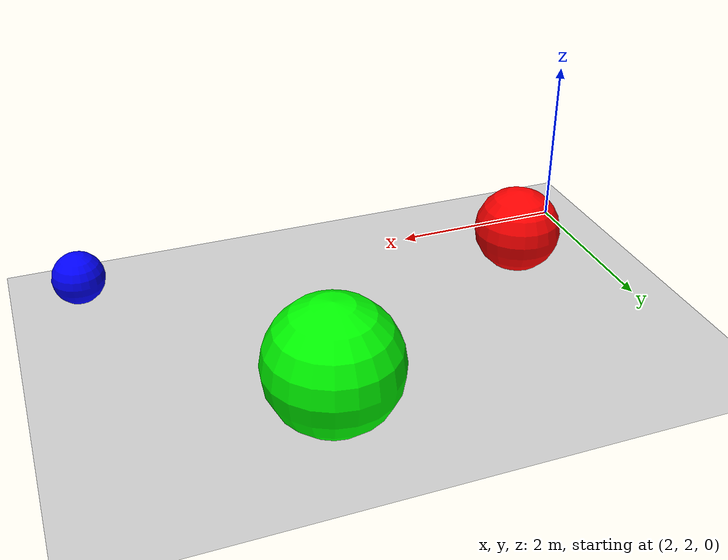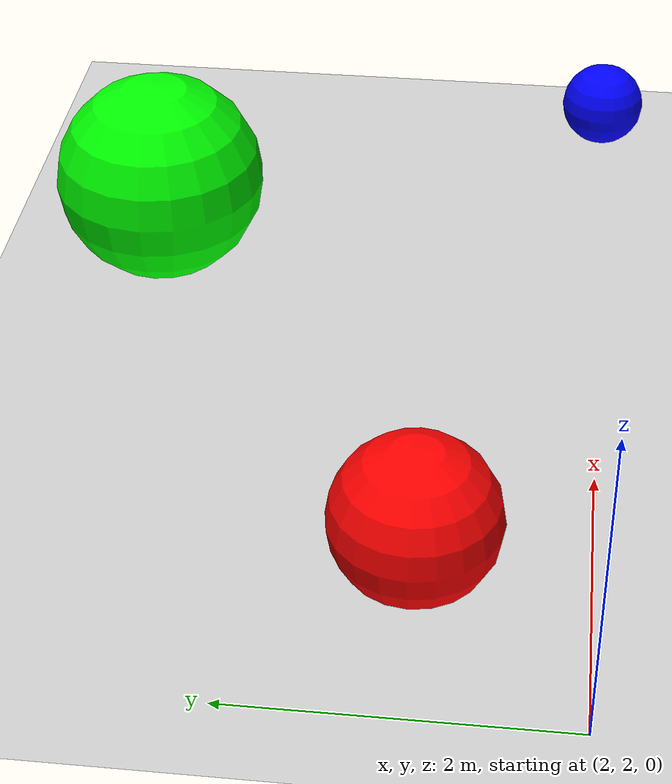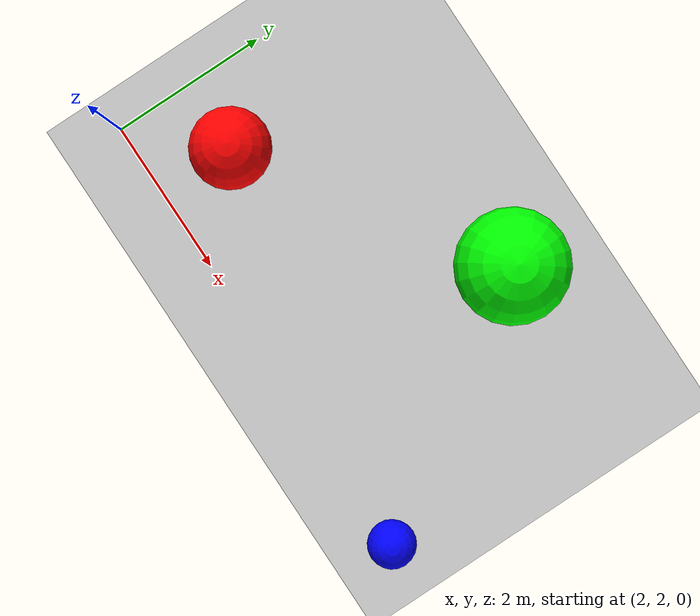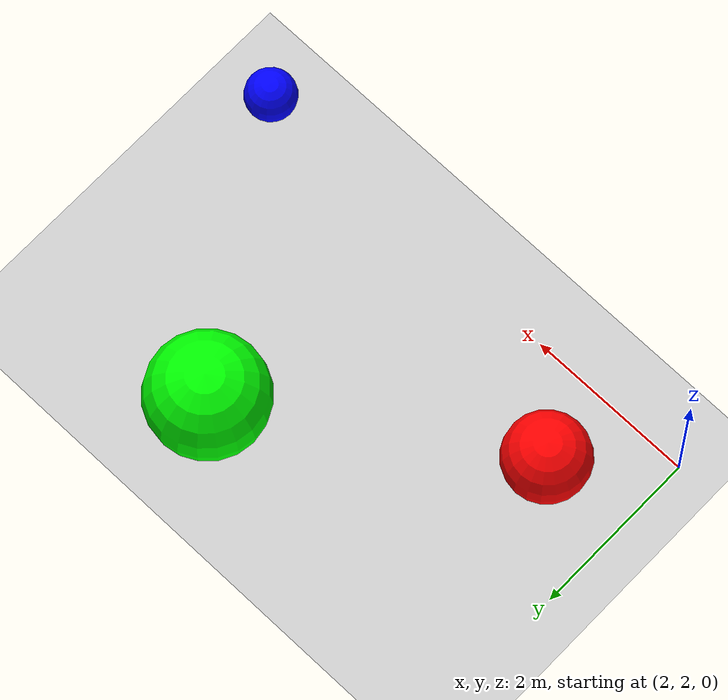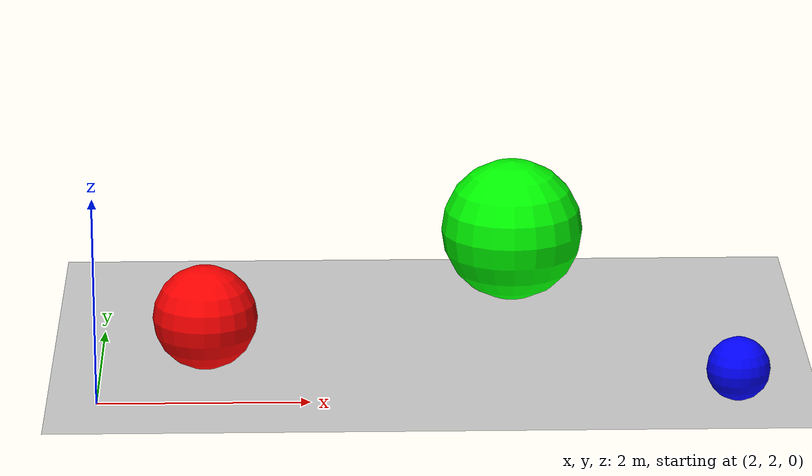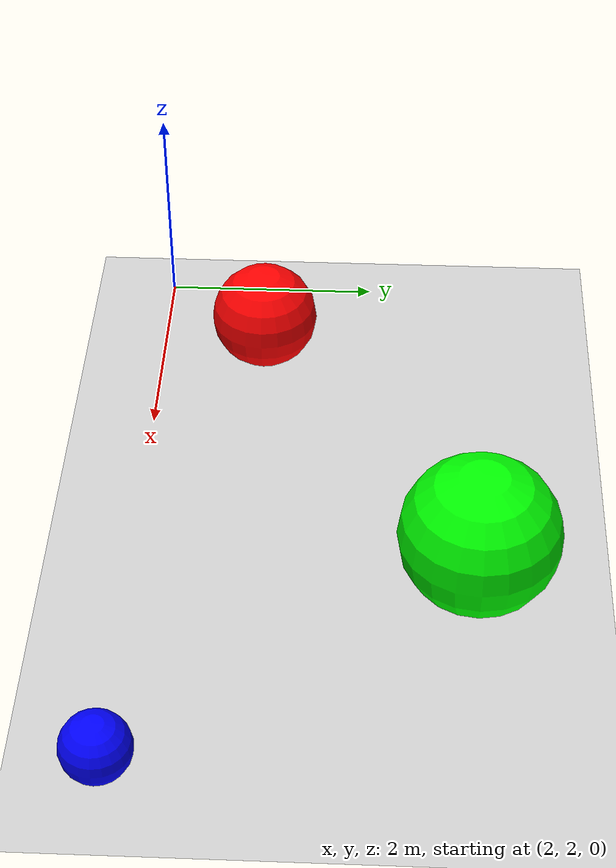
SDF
<?xml version="1.0" ?>
<sdf version="1.4">
  <world name="default">
    <include>
      <uri>model://ground_plane</uri>
    </include>
    <include>
      <uri>model://sun</uri>
    </include>

    <!-- Only one ROS interface plugin is required per world, as any other plugin can connect a Gazebo
         topic to a ROS topic (or vise versa). -->
    <plugin name="ros_interface_plugin" filename="librotors_gazebo_ros_interface_plugin.so"/>

    <spherical_coordinates>
      <surface_model>EARTH_WGS84</surface_model>
      <latitude_deg>47.3667</latitude_deg>
      <longitude_deg>8.5500</longitude_deg>
      <elevation>500.0</elevation>
      <heading_deg>0</heading_deg>
    </spherical_coordinates>
    <physics type='ode'>
      <ode>
        <solver>
          <type>quick</type>
          <iters>1000</iters>
          <sor>1.3</sor>
        </solver>
        <constraints>
          <cfm>0</cfm>
          <erp>0.2</erp>
          <contact_max_correcting_vel>100</contact_max_correcting_vel>
          <contact_surface_layer>0.001</contact_surface_layer>
        </constraints>
      </ode>
      <max_step_size>0.01</max_step_size>
      <real_time_factor>1</real_time_factor>
      <real_time_update_rate>100</real_time_update_rate>
      <gravity>0 0 -9.8</gravity>
    </physics>

    <!-- Spherical obstacles -->
    <model name="obstacle_sphere_1">
      <pose>3 3 0.5 0 0 0</pose>
      <static>true</static>
      <link name="link">
        <collision name="collision">
          <geometry>
            <sphere>
              <radius>0.5</radius>
            </sphere>
          </geometry>
        </collision>
        <visual name="visual">
          <geometry>
            <sphere>
              <radius>0.5</radius>
            </sphere>
          </geometry>
          <material>
            <ambient>1 0 0 1</ambient>
          </material>
        </visual>
      </link>
    </model>
    <model name="obstacle_sphere_2">
      <pose>6 5 0.7 0 0 0</pose>
      <static>true</static>
      <link name="link">
        <collision name="collision">
          <geometry>
            <sphere>
              <radius>0.7</radius>
            </sphere>
          </geometry>
        </collision>
        <visual name="visual">
          <geometry>
            <sphere>
              <radius>0.7</radius>
            </sphere>
          </geometry>
          <material>
            <ambient>0 1 0 1</ambient>
          </material>
        </visual>
      </link>
    </model>
    <model name="obstacle_sphere_3">
      <pose>8 2 0.3 0 0 0</pose>
      <static>true</static>
      <link name="link">
        <collision name="collision">
          <geometry>
            <sphere>
              <radius>0.3</radius>
            </sphere>
          </geometry>
        </collision>
        <visual name="visual">
          <geometry>
            <sphere>
              <radius>0.3</radius>
            </sphere>
          </geometry>
          <material>
            <ambient>0 0 1 1</ambient>
          </material>
        </visual>
      </link>
    </model>
  </world>
</sdf>
